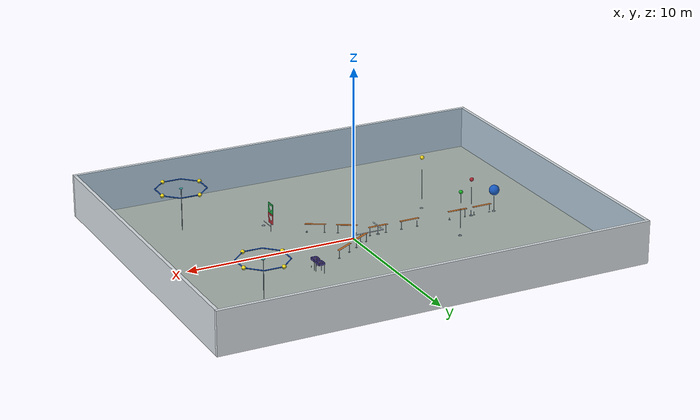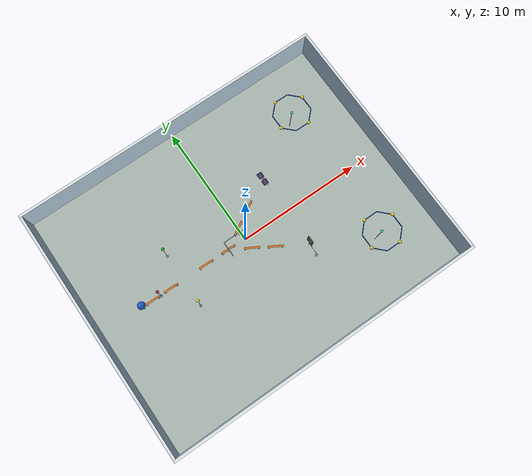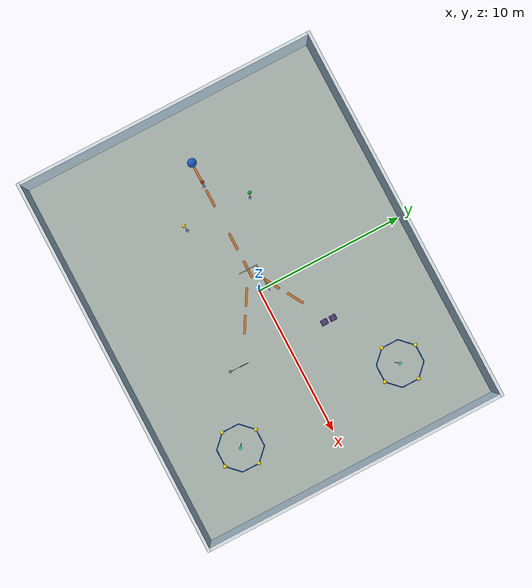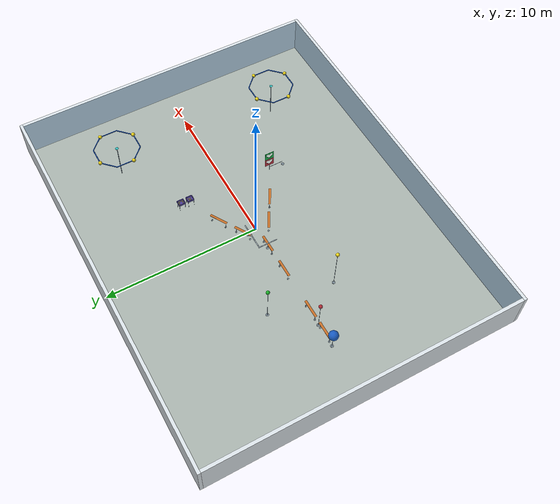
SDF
<?xml version="1.0" ?>
<sdf version="1.6">
  <world name="niot_mission">
    <scene>
      <ambient>0.6 0.6 0.6 1</ambient>
      <background>0.7 0.85 0.95 1</background>
      <shadows>true</shadows>
    </scene>
    <include><uri>model://sun</uri></include>
    <light name='fill' type='directional'>
      <pose>0 0 10 0 0 0</pose>
      <diffuse>0.5 0.5 0.5 1</diffuse><specular>0.1 0.1 0.1 1</specular>
      <direction>0.4 0.4 -1</direction><cast_shadows>false</cast_shadows>
    </light>
    <physics name='default' type='ode'><gravity>0 0 -9.81</gravity></physics>
<model name='niot_pool'><static>true</static><pose>0 0 0 0 0 0.0</pose><link name='link'><visual name='floor_v'><pose>0 0 -0.05 0 0 0</pose><transparency>0.0</transparency><geometry><box><size>25.0 20.0 0.1</size></box></geometry><material><ambient>0.8 0.78 0.7 1.0</ambient><diffuse>0.8 0.78 0.7 1.0</diffuse><specular>0.1 0.1 0.1 1</specular><emissive>0.096 0.0936 0.08399999999999999 1</emissive></material></visual><collision name='floor_c'><pose>0 0 -0.05 0 0 0</pose><geometry><box><size>25.0 20.0 0.1</size></box></geometry></collision><visual name='wn_v'><pose>0 10.1 1.25 0 0 0</pose><transparency>0.0</transparency><geometry><box><size>25.4 0.2 2.5</size></box></geometry><material><ambient>0.85 0.88 0.9 1.0</ambient><diffuse>0.85 0.88 0.9 1.0</diffuse><specular>0.1 0.1 0.1 1</specular><emissive>0.102 0.1056 0.108 1</emissive></material></visual><collision name='wn_c'><pose>0 10.1 1.25 0 0 0</pose><geometry><box><size>25.4 0.2 2.5</size></box></geometry></collision><visual name='ws_v'><pose>0 -10.1 1.25 0 0 0</pose><transparency>0.0</transparency><geometry><box><size>25.4 0.2 2.5</size></box></geometry><material><ambient>0.85 0.88 0.9 1.0</ambient><diffuse>0.85 0.88 0.9 1.0</diffuse><specular>0.1 0.1 0.1 1</specular><emissive>0.102 0.1056 0.108 1</emissive></material></visual><collision name='ws_c'><pose>0 -10.1 1.25 0 0 0</pose><geometry><box><size>25.4 0.2 2.5</size></box></geometry></collision><visual name='we_v'><pose>12.6 0 1.25 0 0 0</pose><transparency>0.0</transparency><geometry><box><size>0.2 20.0 2.5</size></box></geometry><material><ambient>0.85 0.88 0.9 1.0</ambient><diffuse>0.85 0.88 0.9 1.0</diffuse><specular>0.1 0.1 0.1 1</specular><emissive>0.102 0.1056 0.108 1</emissive></material></visual><collision name='we_c'><pose>12.6 0 1.25 0 0 0</pose><geometry><box><size>0.2 20.0 2.5</size></box></geometry></collision><visual name='ww_v'><pose>-12.6 0 1.25 0 0 0</pose><transparency>0.0</transparency><geometry><box><size>0.2 20.0 2.5</size></box></geometry><material><ambient>0.85 0.88 0.9 1.0</ambient><diffuse>0.85 0.88 0.9 1.0</diffuse><specular>0.1 0.1 0.1 1</specular><emissive>0.102 0.1056 0.108 1</emissive></material></visual><collision name='ww_c'><pose>-12.6 0 1.25 0 0 0</pose><geometry><box><size>0.2 20.0 2.5</size></box></geometry></collision></link></model>
<model name='water'><static>true</static><pose>0 0 0 0 0 0.0</pose><link name='link'><visual name='water'><pose>0 0 1.25 0 0 0</pose><transparency>0.8</transparency><geometry><box><size>25.0 20.0 2.5</size></box></geometry><material><ambient>0.1 0.4 0.6 1.0</ambient><diffuse>0.1 0.4 0.6 1.0</diffuse><specular>0.1 0.1 0.1 1</specular><emissive>0.012 0.048 0.072 1</emissive></material></visual></link></model>
<model name='flower_red'><static>true</static><pose>-7.5 0.0 0 0 0 0.0</pose><link name='link'><visual name='base_v'><pose>0 0 0.005 0 0 0</pose><transparency>0.0</transparency><geometry><cylinder><radius>0.1</radius><length>0.01</length></cylinder></geometry><material><ambient>0.55 0.55 0.55 1.0</ambient><diffuse>0.55 0.55 0.55 1.0</diffuse><specular>0.1 0.1 0.1 1</specular><emissive>0.066 0.066 0.066 1</emissive></material></visual><collision name='base_c'><pose>0 0 0.005 0 0 0</pose><geometry><cylinder><radius>0.1</radius><length>0.01</length></cylinder></geometry></collision><visual name='post_v'><pose>0 0 1.05 0 0 0</pose><transparency>0.0</transparency><geometry><cylinder><radius>0.0105</radius><length>2.1</length></cylinder></geometry><material><ambient>0.55 0.55 0.55 1.0</ambient><diffuse>0.55 0.55 0.55 1.0</diffuse><specular>0.1 0.1 0.1 1</specular><emissive>0.066 0.066 0.066 1</emissive></material></visual><collision name='post_c'><pose>0 0 1.05 0 0 0</pose><geometry><cylinder><radius>0.0105</radius><length>2.1</length></cylinder></geometry></collision><visual name='ball_v'><pose>0 0 2.2143 0 0 0</pose><transparency>0.0</transparency><geometry><sphere><radius>0.1143</radius></sphere></geometry><material><ambient>0.85 0.1 0.1 1.0</ambient><diffuse>0.85 0.1 0.1 1.0</diffuse><specular>0.1 0.1 0.1 1</specular><emissive>0.102 0.012 0.012 1</emissive></material></visual><collision name='ball_c'><pose>0 0 2.2143 0 0 0</pose><geometry><sphere><radius>0.1143</radius></sphere></geometry></collision></link></model>
<model name='flower_green'><static>true</static><pose>-5.515686516701557 2.25 0 0 0 0.0</pose><link name='link'><visual name='base_v'><pose>0 0 0.005 0 0 0</pose><transparency>0.0</transparency><geometry><cylinder><radius>0.1</radius><length>0.01</length></cylinder></geometry><material><ambient>0.55 0.55 0.55 1.0</ambient><diffuse>0.55 0.55 0.55 1.0</diffuse><specular>0.1 0.1 0.1 1</specular><emissive>0.066 0.066 0.066 1</emissive></material></visual><collision name='base_c'><pose>0 0 0.005 0 0 0</pose><geometry><cylinder><radius>0.1</radius><length>0.01</length></cylinder></geometry></collision><visual name='post_v'><pose>0 0 1.25 0 0 0</pose><transparency>0.0</transparency><geometry><cylinder><radius>0.0105</radius><length>2.5</length></cylinder></geometry><material><ambient>0.55 0.55 0.55 1.0</ambient><diffuse>0.55 0.55 0.55 1.0</diffuse><specular>0.1 0.1 0.1 1</specular><emissive>0.066 0.066 0.066 1</emissive></material></visual><collision name='post_c'><pose>0 0 1.25 0 0 0</pose><geometry><cylinder><radius>0.0105</radius><length>2.5</length></cylinder></geometry></collision><visual name='ball_v'><pose>0 0 2.6143 0 0 0</pose><transparency>0.0</transparency><geometry><sphere><radius>0.1143</radius></sphere></geometry><material><ambient>0.1 0.7 0.15 1.0</ambient><diffuse>0.1 0.7 0.15 1.0</diffuse><specular>0.1 0.1 0.1 1</specular><emissive>0.012 0.08399999999999999 0.018 1</emissive></material></visual><collision name='ball_c'><pose>0 0 2.6143 0 0 0</pose><geometry><sphere><radius>0.1143</radius></sphere></geometry></collision></link></model>
<model name='flower_yellow'><static>true</static><pose>-5.515686516701557 -2.25 0 0 0 0.0</pose><link name='link'><visual name='base_v'><pose>0 0 0.005 0 0 0</pose><transparency>0.0</transparency><geometry><cylinder><radius>0.1</radius><length>0.01</length></cylinder></geometry><material><ambient>0.55 0.55 0.55 1.0</ambient><diffuse>0.55 0.55 0.55 1.0</diffuse><specular>0.1 0.1 0.1 1</specular><emissive>0.066 0.066 0.066 1</emissive></material></visual><collision name='base_c'><pose>0 0 0.005 0 0 0</pose><geometry><cylinder><radius>0.1</radius><length>0.01</length></cylinder></geometry></collision><visual name='post_v'><pose>0 0 1.5 0 0 0</pose><transparency>0.0</transparency><geometry><cylinder><radius>0.0105</radius><length>3.0</length></cylinder></geometry><material><ambient>0.55 0.55 0.55 1.0</ambient><diffuse>0.55 0.55 0.55 1.0</diffuse><specular>0.1 0.1 0.1 1</specular><emissive>0.066 0.066 0.066 1</emissive></material></visual><collision name='post_c'><pose>0 0 1.5 0 0 0</pose><geometry><cylinder><radius>0.0105</radius><length>3.0</length></cylinder></geometry></collision><visual name='ball_v'><pose>0 0 3.1143 0 0 0</pose><transparency>0.0</transparency><geometry><sphere><radius>0.1143</radius></sphere></geometry><material><ambient>0.95 0.85 0.1 1.0</ambient><diffuse>0.95 0.85 0.1 1.0</diffuse><specular>0.1 0.1 0.1 1</specular><emissive>0.11399999999999999 0.102 0.012 1</emissive></material></visual><collision name='ball_c'><pose>0 0 3.1143 0 0 0</pose><geometry><sphere><radius>0.1143</radius></sphere></geometry></collision></link></model>
<model name='start_buoy'><static>true</static><pose>-9.0 0.0 0 0 0 0.0</pose><link name='link'><visual name='base_v'><pose>0 0 0.005 0 0 0</pose><transparency>0.0</transparency><geometry><cylinder><radius>0.1</radius><length>0.01</length></cylinder></geometry><material><ambient>0.55 0.55 0.55 1.0</ambient><diffuse>0.55 0.55 0.55 1.0</diffuse><specular>0.1 0.1 0.1 1</specular><emissive>0.066 0.066 0.066 1</emissive></material></visual><collision name='base_c'><pose>0 0 0.005 0 0 0</pose><geometry><cylinder><radius>0.1</radius><length>0.01</length></cylinder></geometry></collision><visual name='post_v'><pose>0 0 0.5 0 0 0</pose><transparency>0.0</transparency><geometry><cylinder><radius>0.0105</radius><length>1.0</length></cylinder></geometry><material><ambient>0.55 0.55 0.55 1.0</ambient><diffuse>0.55 0.55 0.55 1.0</diffuse><specular>0.1 0.1 0.1 1</specular><emissive>0.066 0.066 0.066 1</emissive></material></visual><collision name='post_c'><pose>0 0 0.5 0 0 0</pose><geometry><cylinder><radius>0.0105</radius><length>1.0</length></cylinder></geometry></collision><visual name='ball_v'><pose>0 0 1.3 0 0 0</pose><transparency>0.0</transparency><geometry><sphere><radius>0.3</radius></sphere></geometry><material><ambient>0.1 0.35 0.8 1.0</ambient><diffuse>0.1 0.35 0.8 1.0</diffuse><specular>0.1 0.1 0.1 1</specular><emissive>0.012 0.041999999999999996 0.096 1</emissive></material></visual><collision name='ball_c'><pose>0 0 1.3 0 0 0</pose><geometry><sphere><radius>0.3</radius></sphere></geometry></collision></link></model>
<model name='path_0'><static>true</static><pose>-8.2 0.0 0 0 0 0.0</pose><link name='link'><visual name='plate_v'><pose>0 0 0.5 0 0 0</pose><transparency>0.0</transparency><geometry><box><size>1.2 0.15 0.01</size></box></geometry><material><ambient>0.95 0.45 0.05 1.0</ambient><diffuse>0.95 0.45 0.05 1.0</diffuse><specular>0.1 0.1 0.1 1</specular><emissive>0.11399999999999999 0.054 0.006 1</emissive></material></visual><collision name='plate_c'><pose>0 0 0.5 0 0 0</pose><geometry><box><size>1.2 0.15 0.01</size></box></geometry></collision><visual name='post-0.5_v'><pose>-0.5 0 0.25 0 0 0</pose><transparency>0.0</transparency><geometry><cylinder><radius>0.0105</radius><length>0.5</length></cylinder></geometry><material><ambient>0.55 0.55 0.55 1.0</ambient><diffuse>0.55 0.55 0.55 1.0</diffuse><specular>0.1 0.1 0.1 1</specular><emissive>0.066 0.066 0.066 1</emissive></material></visual><visual name='base-0.5_v'><pose>-0.5 0 0.005 0 0 0</pose><transparency>0.0</transparency><geometry><cylinder><radius>0.06</radius><length>0.01</length></cylinder></geometry><material><ambient>0.55 0.55 0.55 1.0</ambient><diffuse>0.55 0.55 0.55 1.0</diffuse><specular>0.1 0.1 0.1 1</specular><emissive>0.066 0.066 0.066 1</emissive></material></visual><visual name='post0.5_v'><pose>0.5 0 0.25 0 0 0</pose><transparency>0.0</transparency><geometry><cylinder><radius>0.0105</radius><length>0.5</length></cylinder></geometry><material><ambient>0.55 0.55 0.55 1.0</ambient><diffuse>0.55 0.55 0.55 1.0</diffuse><specular>0.1 0.1 0.1 1</specular><emissive>0.066 0.066 0.066 1</emissive></material></visual><visual name='base0.5_v'><pose>0.5 0 0.005 0 0 0</pose><transparency>0.0</transparency><geometry><cylinder><radius>0.06</radius><length>0.01</length></cylinder></geometry><material><ambient>0.55 0.55 0.55 1.0</ambient><diffuse>0.55 0.55 0.55 1.0</diffuse><specular>0.1 0.1 0.1 1</specular><emissive>0.066 0.066 0.066 1</emissive></material></visual></link></model>
<model name='path_1'><static>true</static><pose>-6.6 0.0 0 0 0 0.0</pose><link name='link'><visual name='plate_v'><pose>0 0 0.5 0 0 0</pose><transparency>0.0</transparency><geometry><box><size>1.2 0.15 0.01</size></box></geometry><material><ambient>0.95 0.45 0.05 1.0</ambient><diffuse>0.95 0.45 0.05 1.0</diffuse><specular>0.1 0.1 0.1 1</specular><emissive>0.11399999999999999 0.054 0.006 1</emissive></material></visual><collision name='plate_c'><pose>0 0 0.5 0 0 0</pose><geometry><box><size>1.2 0.15 0.01</size></box></geometry></collision><visual name='post-0.5_v'><pose>-0.5 0 0.25 0 0 0</pose><transparency>0.0</transparency><geometry><cylinder><radius>0.0105</radius><length>0.5</length></cylinder></geometry><material><ambient>0.55 0.55 0.55 1.0</ambient><diffuse>0.55 0.55 0.55 1.0</diffuse><specular>0.1 0.1 0.1 1</specular><emissive>0.066 0.066 0.066 1</emissive></material></visual><visual name='base-0.5_v'><pose>-0.5 0 0.005 0 0 0</pose><transparency>0.0</transparency><geometry><cylinder><radius>0.06</radius><length>0.01</length></cylinder></geometry><material><ambient>0.55 0.55 0.55 1.0</ambient><diffuse>0.55 0.55 0.55 1.0</diffuse><specular>0.1 0.1 0.1 1</specular><emissive>0.066 0.066 0.066 1</emissive></material></visual><visual name='post0.5_v'><pose>0.5 0 0.25 0 0 0</pose><transparency>0.0</transparency><geometry><cylinder><radius>0.0105</radius><length>0.5</length></cylinder></geometry><material><ambient>0.55 0.55 0.55 1.0</ambient><diffuse>0.55 0.55 0.55 1.0</diffuse><specular>0.1 0.1 0.1 1</specular><emissive>0.066 0.066 0.066 1</emissive></material></visual><visual name='base0.5_v'><pose>0.5 0 0.005 0 0 0</pose><transparency>0.0</transparency><geometry><cylinder><radius>0.06</radius><length>0.01</length></cylinder></geometry><material><ambient>0.55 0.55 0.55 1.0</ambient><diffuse>0.55 0.55 0.55 1.0</diffuse><specular>0.1 0.1 0.1 1</specular><emissive>0.066 0.066 0.066 1</emissive></material></visual></link></model>
<model name='path_2'><static>true</static><pose>-3.5 0.0 0 0 0 0.0</pose><link name='link'><visual name='plate_v'><pose>0 0 0.5 0 0 0</pose><transparency>0.0</transparency><geometry><box><size>1.2 0.15 0.01</size></box></geometry><material><ambient>0.95 0.45 0.05 1.0</ambient><diffuse>0.95 0.45 0.05 1.0</diffuse><specular>0.1 0.1 0.1 1</specular><emissive>0.11399999999999999 0.054 0.006 1</emissive></material></visual><collision name='plate_c'><pose>0 0 0.5 0 0 0</pose><geometry><box><size>1.2 0.15 0.01</size></box></geometry></collision><visual name='post-0.5_v'><pose>-0.5 0 0.25 0 0 0</pose><transparency>0.0</transparency><geometry><cylinder><radius>0.0105</radius><length>0.5</length></cylinder></geometry><material><ambient>0.55 0.55 0.55 1.0</ambient><diffuse>0.55 0.55 0.55 1.0</diffuse><specular>0.1 0.1 0.1 1</specular><emissive>0.066 0.066 0.066 1</emissive></material></visual><visual name='base-0.5_v'><pose>-0.5 0 0.005 0 0 0</pose><transparency>0.0</transparency><geometry><cylinder><radius>0.06</radius><length>0.01</length></cylinder></geometry><material><ambient>0.55 0.55 0.55 1.0</ambient><diffuse>0.55 0.55 0.55 1.0</diffuse><specular>0.1 0.1 0.1 1</specular><emissive>0.066 0.066 0.066 1</emissive></material></visual><visual name='post0.5_v'><pose>0.5 0 0.25 0 0 0</pose><transparency>0.0</transparency><geometry><cylinder><radius>0.0105</radius><length>0.5</length></cylinder></geometry><material><ambient>0.55 0.55 0.55 1.0</ambient><diffuse>0.55 0.55 0.55 1.0</diffuse><specular>0.1 0.1 0.1 1</specular><emissive>0.066 0.066 0.066 1</emissive></material></visual><visual name='base0.5_v'><pose>0.5 0 0.005 0 0 0</pose><transparency>0.0</transparency><geometry><cylinder><radius>0.06</radius><length>0.01</length></cylinder></geometry><material><ambient>0.55 0.55 0.55 1.0</ambient><diffuse>0.55 0.55 0.55 1.0</diffuse><specular>0.1 0.1 0.1 1</specular><emissive>0.066 0.066 0.066 1</emissive></material></visual></link></model>
<model name='path_3'><static>true</static><pose>-1.5156865167015567 0.0 0 0 0 0.0</pose><link name='link'><visual name='plate_v'><pose>0 0 0.5 0 0 0</pose><transparency>0.0</transparency><geometry><box><size>1.2 0.15 0.01</size></box></geometry><material><ambient>0.95 0.45 0.05 1.0</ambient><diffuse>0.95 0.45 0.05 1.0</diffuse><specular>0.1 0.1 0.1 1</specular><emissive>0.11399999999999999 0.054 0.006 1</emissive></material></visual><collision name='plate_c'><pose>0 0 0.5 0 0 0</pose><geometry><box><size>1.2 0.15 0.01</size></box></geometry></collision><visual name='post-0.5_v'><pose>-0.5 0 0.25 0 0 0</pose><transparency>0.0</transparency><geometry><cylinder><radius>0.0105</radius><length>0.5</length></cylinder></geometry><material><ambient>0.55 0.55 0.55 1.0</ambient><diffuse>0.55 0.55 0.55 1.0</diffuse><specular>0.1 0.1 0.1 1</specular><emissive>0.066 0.066 0.066 1</emissive></material></visual><visual name='base-0.5_v'><pose>-0.5 0 0.005 0 0 0</pose><transparency>0.0</transparency><geometry><cylinder><radius>0.06</radius><length>0.01</length></cylinder></geometry><material><ambient>0.55 0.55 0.55 1.0</ambient><diffuse>0.55 0.55 0.55 1.0</diffuse><specular>0.1 0.1 0.1 1</specular><emissive>0.066 0.066 0.066 1</emissive></material></visual><visual name='post0.5_v'><pose>0.5 0 0.25 0 0 0</pose><transparency>0.0</transparency><geometry><cylinder><radius>0.0105</radius><length>0.5</length></cylinder></geometry><material><ambient>0.55 0.55 0.55 1.0</ambient><diffuse>0.55 0.55 0.55 1.0</diffuse><specular>0.1 0.1 0.1 1</specular><emissive>0.066 0.066 0.066 1</emissive></material></visual><visual name='base0.5_v'><pose>0.5 0 0.005 0 0 0</pose><transparency>0.0</transparency><geometry><cylinder><radius>0.06</radius><length>0.01</length></cylinder></geometry><material><ambient>0.55 0.55 0.55 1.0</ambient><diffuse>0.55 0.55 0.55 1.0</diffuse><specular>0.1 0.1 0.1 1</specular><emissive>0.066 0.066 0.066 1</emissive></material></visual></link></model>
<model name='path_4'><static>true</static><pose>-0.01568651670155674 0.9 0 0 0 0.5235987755982988</pose><link name='link'><visual name='plate_v'><pose>0 0 0.5 0 0 0</pose><transparency>0.0</transparency><geometry><box><size>1.2 0.15 0.01</size></box></geometry><material><ambient>0.95 0.45 0.05 1.0</ambient><diffuse>0.95 0.45 0.05 1.0</diffuse><specular>0.1 0.1 0.1 1</specular><emissive>0.11399999999999999 0.054 0.006 1</emissive></material></visual><collision name='plate_c'><pose>0 0 0.5 0 0 0</pose><geometry><box><size>1.2 0.15 0.01</size></box></geometry></collision><visual name='post-0.5_v'><pose>-0.5 0 0.25 0 0 0</pose><transparency>0.0</transparency><geometry><cylinder><radius>0.0105</radius><length>0.5</length></cylinder></geometry><material><ambient>0.55 0.55 0.55 1.0</ambient><diffuse>0.55 0.55 0.55 1.0</diffuse><specular>0.1 0.1 0.1 1</specular><emissive>0.066 0.066 0.066 1</emissive></material></visual><visual name='base-0.5_v'><pose>-0.5 0 0.005 0 0 0</pose><transparency>0.0</transparency><geometry><cylinder><radius>0.06</radius><length>0.01</length></cylinder></geometry><material><ambient>0.55 0.55 0.55 1.0</ambient><diffuse>0.55 0.55 0.55 1.0</diffuse><specular>0.1 0.1 0.1 1</specular><emissive>0.066 0.066 0.066 1</emissive></material></visual><visual name='post0.5_v'><pose>0.5 0 0.25 0 0 0</pose><transparency>0.0</transparency><geometry><cylinder><radius>0.0105</radius><length>0.5</length></cylinder></geometry><material><ambient>0.55 0.55 0.55 1.0</ambient><diffuse>0.55 0.55 0.55 1.0</diffuse><specular>0.1 0.1 0.1 1</specular><emissive>0.066 0.066 0.066 1</emissive></material></visual><visual name='base0.5_v'><pose>0.5 0 0.005 0 0 0</pose><transparency>0.0</transparency><geometry><cylinder><radius>0.06</radius><length>0.01</length></cylinder></geometry><material><ambient>0.55 0.55 0.55 1.0</ambient><diffuse>0.55 0.55 0.55 1.0</diffuse><specular>0.1 0.1 0.1 1</specular><emissive>0.066 0.066 0.066 1</emissive></material></visual></link></model>
<model name='path_5'><static>true</static><pose>1.4843134832984433 1.8 0 0 0 0.5235987755982988</pose><link name='link'><visual name='plate_v'><pose>0 0 0.5 0 0 0</pose><transparency>0.0</transparency><geometry><box><size>1.2 0.15 0.01</size></box></geometry><material><ambient>0.95 0.45 0.05 1.0</ambient><diffuse>0.95 0.45 0.05 1.0</diffuse><specular>0.1 0.1 0.1 1</specular><emissive>0.11399999999999999 0.054 0.006 1</emissive></material></visual><collision name='plate_c'><pose>0 0 0.5 0 0 0</pose><geometry><box><size>1.2 0.15 0.01</size></box></geometry></collision><visual name='post-0.5_v'><pose>-0.5 0 0.25 0 0 0</pose><transparency>0.0</transparency><geometry><cylinder><radius>0.0105</radius><length>0.5</length></cylinder></geometry><material><ambient>0.55 0.55 0.55 1.0</ambient><diffuse>0.55 0.55 0.55 1.0</diffuse><specular>0.1 0.1 0.1 1</specular><emissive>0.066 0.066 0.066 1</emissive></material></visual><visual name='base-0.5_v'><pose>-0.5 0 0.005 0 0 0</pose><transparency>0.0</transparency><geometry><cylinder><radius>0.06</radius><length>0.01</length></cylinder></geometry><material><ambient>0.55 0.55 0.55 1.0</ambient><diffuse>0.55 0.55 0.55 1.0</diffuse><specular>0.1 0.1 0.1 1</specular><emissive>0.066 0.066 0.066 1</emissive></material></visual><visual name='post0.5_v'><pose>0.5 0 0.25 0 0 0</pose><transparency>0.0</transparency><geometry><cylinder><radius>0.0105</radius><length>0.5</length></cylinder></geometry><material><ambient>0.55 0.55 0.55 1.0</ambient><diffuse>0.55 0.55 0.55 1.0</diffuse><specular>0.1 0.1 0.1 1</specular><emissive>0.066 0.066 0.066 1</emissive></material></visual><visual name='base0.5_v'><pose>0.5 0 0.005 0 0 0</pose><transparency>0.0</transparency><geometry><cylinder><radius>0.06</radius><length>0.01</length></cylinder></geometry><material><ambient>0.55 0.55 0.55 1.0</ambient><diffuse>0.55 0.55 0.55 1.0</diffuse><specular>0.1 0.1 0.1 1</specular><emissive>0.066 0.066 0.066 1</emissive></material></visual></link></model>
<model name='path_6'><static>true</static><pose>-0.01568651670155674 -0.9 0 0 0 -0.5235987755982988</pose><link name='link'><visual name='plate_v'><pose>0 0 0.5 0 0 0</pose><transparency>0.0</transparency><geometry><box><size>1.2 0.15 0.01</size></box></geometry><material><ambient>0.95 0.45 0.05 1.0</ambient><diffuse>0.95 0.45 0.05 1.0</diffuse><specular>0.1 0.1 0.1 1</specular><emissive>0.11399999999999999 0.054 0.006 1</emissive></material></visual><collision name='plate_c'><pose>0 0 0.5 0 0 0</pose><geometry><box><size>1.2 0.15 0.01</size></box></geometry></collision><visual name='post-0.5_v'><pose>-0.5 0 0.25 0 0 0</pose><transparency>0.0</transparency><geometry><cylinder><radius>0.0105</radius><length>0.5</length></cylinder></geometry><material><ambient>0.55 0.55 0.55 1.0</ambient><diffuse>0.55 0.55 0.55 1.0</diffuse><specular>0.1 0.1 0.1 1</specular><emissive>0.066 0.066 0.066 1</emissive></material></visual><visual name='base-0.5_v'><pose>-0.5 0 0.005 0 0 0</pose><transparency>0.0</transparency><geometry><cylinder><radius>0.06</radius><length>0.01</length></cylinder></geometry><material><ambient>0.55 0.55 0.55 1.0</ambient><diffuse>0.55 0.55 0.55 1.0</diffuse><specular>0.1 0.1 0.1 1</specular><emissive>0.066 0.066 0.066 1</emissive></material></visual><visual name='post0.5_v'><pose>0.5 0 0.25 0 0 0</pose><transparency>0.0</transparency><geometry><cylinder><radius>0.0105</radius><length>0.5</length></cylinder></geometry><material><ambient>0.55 0.55 0.55 1.0</ambient><diffuse>0.55 0.55 0.55 1.0</diffuse><specular>0.1 0.1 0.1 1</specular><emissive>0.066 0.066 0.066 1</emissive></material></visual><visual name='base0.5_v'><pose>0.5 0 0.005 0 0 0</pose><transparency>0.0</transparency><geometry><cylinder><radius>0.06</radius><length>0.01</length></cylinder></geometry><material><ambient>0.55 0.55 0.55 1.0</ambient><diffuse>0.55 0.55 0.55 1.0</diffuse><specular>0.1 0.1 0.1 1</specular><emissive>0.066 0.066 0.066 1</emissive></material></visual></link></model>
<model name='path_7'><static>true</static><pose>1.4843134832984433 -1.8 0 0 0 -0.5235987755982988</pose><link name='link'><visual name='plate_v'><pose>0 0 0.5 0 0 0</pose><transparency>0.0</transparency><geometry><box><size>1.2 0.15 0.01</size></box></geometry><material><ambient>0.95 0.45 0.05 1.0</ambient><diffuse>0.95 0.45 0.05 1.0</diffuse><specular>0.1 0.1 0.1 1</specular><emissive>0.11399999999999999 0.054 0.006 1</emissive></material></visual><collision name='plate_c'><pose>0 0 0.5 0 0 0</pose><geometry><box><size>1.2 0.15 0.01</size></box></geometry></collision><visual name='post-0.5_v'><pose>-0.5 0 0.25 0 0 0</pose><transparency>0.0</transparency><geometry><cylinder><radius>0.0105</radius><length>0.5</length></cylinder></geometry><material><ambient>0.55 0.55 0.55 1.0</ambient><diffuse>0.55 0.55 0.55 1.0</diffuse><specular>0.1 0.1 0.1 1</specular><emissive>0.066 0.066 0.066 1</emissive></material></visual><visual name='base-0.5_v'><pose>-0.5 0 0.005 0 0 0</pose><transparency>0.0</transparency><geometry><cylinder><radius>0.06</radius><length>0.01</length></cylinder></geometry><material><ambient>0.55 0.55 0.55 1.0</ambient><diffuse>0.55 0.55 0.55 1.0</diffuse><specular>0.1 0.1 0.1 1</specular><emissive>0.066 0.066 0.066 1</emissive></material></visual><visual name='post0.5_v'><pose>0.5 0 0.25 0 0 0</pose><transparency>0.0</transparency><geometry><cylinder><radius>0.0105</radius><length>0.5</length></cylinder></geometry><material><ambient>0.55 0.55 0.55 1.0</ambient><diffuse>0.55 0.55 0.55 1.0</diffuse><specular>0.1 0.1 0.1 1</specular><emissive>0.066 0.066 0.066 1</emissive></material></visual><visual name='base0.5_v'><pose>0.5 0 0.005 0 0 0</pose><transparency>0.0</transparency><geometry><cylinder><radius>0.06</radius><length>0.01</length></cylinder></geometry><material><ambient>0.55 0.55 0.55 1.0</ambient><diffuse>0.55 0.55 0.55 1.0</diffuse><specular>0.1 0.1 0.1 1</specular><emissive>0.066 0.066 0.066 1</emissive></material></visual></link></model>
<model name='love_lane'><static>true</static><pose>-1.5156865167015567 0.0 0 0 0 0.0</pose><link name='link'><visual name='base1_v'><pose>0 0 0.005 0 0 0</pose><transparency>0.0</transparency><geometry><cylinder><radius>0.1</radius><length>0.01</length></cylinder></geometry><material><ambient>0.55 0.55 0.55 1.0</ambient><diffuse>0.55 0.55 0.55 1.0</diffuse><specular>0.1 0.1 0.1 1</specular><emissive>0.066 0.066 0.066 1</emissive></material></visual><collision name='base1_c'><pose>0 0 0.005 0 0 0</pose><geometry><cylinder><radius>0.1</radius><length>0.01</length></cylinder></geometry></collision><visual name='post1_v'><pose>0 0 0.25 0 0 0</pose><transparency>0.0</transparency><geometry><cylinder><radius>0.0105</radius><length>0.5</length></cylinder></geometry><material><ambient>0.55 0.55 0.55 1.0</ambient><diffuse>0.55 0.55 0.55 1.0</diffuse><specular>0.1 0.1 0.1 1</specular><emissive>0.066 0.066 0.066 1</emissive></material></visual><visual name='base2_v'><pose>1.4 0.6 0.005 0 0 0</pose><transparency>0.0</transparency><geometry><cylinder><radius>0.1</radius><length>0.01</length></cylinder></geometry><material><ambient>0.55 0.55 0.55 1.0</ambient><diffuse>0.55 0.55 0.55 1.0</diffuse><specular>0.1 0.1 0.1 1</specular><emissive>0.066 0.066 0.066 1</emissive></material></visual><collision name='base2_c'><pose>1.4 0.6 0.005 0 0 0</pose><geometry><cylinder><radius>0.1</radius><length>0.01</length></cylinder></geometry></collision><visual name='post2_v'><pose>1.4 0.6 0.25 0 0 0</pose><transparency>0.0</transparency><geometry><cylinder><radius>0.0105</radius><length>0.5</length></cylinder></geometry><material><ambient>0.55 0.55 0.55 1.0</ambient><diffuse>0.55 0.55 0.55 1.0</diffuse><specular>0.1 0.1 0.1 1</specular><emissive>0.066 0.066 0.066 1</emissive></material></visual><visual name='segY_v'><pose>0 0 0.5 1.5708 0 0</pose><transparency>0.0</transparency><geometry><cylinder><radius>0.0302</radius><length>1.2</length></cylinder></geometry><material><ambient>0.92 0.92 0.92 1.0</ambient><diffuse>0.92 0.92 0.92 1.0</diffuse><specular>0.1 0.1 0.1 1</specular><emissive>0.1104 0.1104 0.1104 1</emissive></material></visual><collision name='segY_c'><pose>0 0 0.5 1.5708 0 0</pose><geometry><cylinder><radius>0.0302</radius><length>1.2</length></cylinder></geometry></collision><visual name='elbow_v'><pose>0 0.6 0.5 0 0 0</pose><transparency>0.0</transparency><geometry><sphere><radius>0.03926</radius></sphere></geometry><material><ambient>0.92 0.92 0.92 1.0</ambient><diffuse>0.92 0.92 0.92 1.0</diffuse><specular>0.1 0.1 0.1 1</specular><emissive>0.1104 0.1104 0.1104 1</emissive></material></visual><collision name='elbow_c'><pose>0 0.6 0.5 0 0 0</pose><geometry><sphere><radius>0.03926</radius></sphere></geometry></collision><visual name='segX_v'><pose>0.9 0.6 0.5 0 1.5708 0</pose><transparency>0.0</transparency><geometry><cylinder><radius>0.0302</radius><length>1.8</length></cylinder></geometry><material><ambient>0.92 0.92 0.92 1.0</ambient><diffuse>0.92 0.92 0.92 1.0</diffuse><specular>0.1 0.1 0.1 1</specular><emissive>0.1104 0.1104 0.1104 1</emissive></material></visual><collision name='segX_c'><pose>0.9 0.6 0.5 0 1.5708 0</pose><geometry><cylinder><radius>0.0302</radius><length>1.8</length></cylinder></geometry></collision><visual name='cap1_v'><pose>0 -0.6 0.5 0 0 0</pose><transparency>0.0</transparency><geometry><sphere><radius>0.033220000000000006</radius></sphere></geometry><material><ambient>0.92 0.92 0.92 1.0</ambient><diffuse>0.92 0.92 0.92 1.0</diffuse><specular>0.1 0.1 0.1 1</specular><emissive>0.1104 0.1104 0.1104 1</emissive></material></visual><visual name='cap2_v'><pose>1.8 0.6 0.5 0 0 0</pose><transparency>0.0</transparency><geometry><sphere><radius>0.033220000000000006</radius></sphere></geometry><material><ambient>0.92 0.92 0.92 1.0</ambient><diffuse>0.92 0.92 0.92 1.0</diffuse><specular>0.1 0.1 0.1 1</specular><emissive>0.1104 0.1104 0.1104 1</emissive></material></visual></link></model>
<model name='bin_O'><static>true</static><pose>3.6804659060050753 3.3 0 0 0 0.0</pose><link name='link'><visual name='bottom_v'><pose>0 0 0.5 0 0 0</pose><transparency>0.0</transparency><geometry><box><size>0.36 0.42 0.02</size></box></geometry><material><ambient>0.35 0.2 0.55 1.0</ambient><diffuse>0.35 0.2 0.55 1.0</diffuse><specular>0.1 0.1 0.1 1</specular><emissive>0.041999999999999996 0.024 0.066 1</emissive></material></visual><collision name='bottom_c'><pose>0 0 0.5 0 0 0</pose><geometry><box><size>0.36 0.42 0.02</size></box></geometry></collision><visual name='w0_v'><pose>0.18 0 0.56 0 0 0</pose><transparency>0.0</transparency><geometry><box><size>0.02 0.42 0.12</size></box></geometry><material><ambient>0.35 0.2 0.55 1.0</ambient><diffuse>0.35 0.2 0.55 1.0</diffuse><specular>0.1 0.1 0.1 1</specular><emissive>0.041999999999999996 0.024 0.066 1</emissive></material></visual><collision name='w0_c'><pose>0.18 0 0.56 0 0 0</pose><geometry><box><size>0.02 0.42 0.12</size></box></geometry></collision><visual name='w1_v'><pose>-0.18 0 0.56 0 0 0</pose><transparency>0.0</transparency><geometry><box><size>0.02 0.42 0.12</size></box></geometry><material><ambient>0.35 0.2 0.55 1.0</ambient><diffuse>0.35 0.2 0.55 1.0</diffuse><specular>0.1 0.1 0.1 1</specular><emissive>0.041999999999999996 0.024 0.066 1</emissive></material></visual><collision name='w1_c'><pose>-0.18 0 0.56 0 0 0</pose><geometry><box><size>0.02 0.42 0.12</size></box></geometry></collision><visual name='w2_v'><pose>0 0.21 0.56 0 0 0</pose><transparency>0.0</transparency><geometry><box><size>0.36 0.02 0.12</size></box></geometry><material><ambient>0.35 0.2 0.55 1.0</ambient><diffuse>0.35 0.2 0.55 1.0</diffuse><specular>0.1 0.1 0.1 1</specular><emissive>0.041999999999999996 0.024 0.066 1</emissive></material></visual><collision name='w2_c'><pose>0 0.21 0.56 0 0 0</pose><geometry><box><size>0.36 0.02 0.12</size></box></geometry></collision><visual name='w3_v'><pose>0 -0.21 0.56 0 0 0</pose><transparency>0.0</transparency><geometry><box><size>0.36 0.02 0.12</size></box></geometry><material><ambient>0.35 0.2 0.55 1.0</ambient><diffuse>0.35 0.2 0.55 1.0</diffuse><specular>0.1 0.1 0.1 1</specular><emissive>0.041999999999999996 0.024 0.066 1</emissive></material></visual><collision name='w3_c'><pose>0 -0.21 0.56 0 0 0</pose><geometry><box><size>0.36 0.02 0.12</size></box></geometry></collision><visual name='pt-0.16-0.19_v'><pose>-0.16 -0.19 0.25 0 0 0</pose><transparency>0.0</transparency><geometry><cylinder><radius>0.0105</radius><length>0.5</length></cylinder></geometry><material><ambient>0.55 0.55 0.55 1.0</ambient><diffuse>0.55 0.55 0.55 1.0</diffuse><specular>0.1 0.1 0.1 1</specular><emissive>0.066 0.066 0.066 1</emissive></material></visual><visual name='pt-0.160.19_v'><pose>-0.16 0.19 0.25 0 0 0</pose><transparency>0.0</transparency><geometry><cylinder><radius>0.0105</radius><length>0.5</length></cylinder></geometry><material><ambient>0.55 0.55 0.55 1.0</ambient><diffuse>0.55 0.55 0.55 1.0</diffuse><specular>0.1 0.1 0.1 1</specular><emissive>0.066 0.066 0.066 1</emissive></material></visual><visual name='pt0.16-0.19_v'><pose>0.16 -0.19 0.25 0 0 0</pose><transparency>0.0</transparency><geometry><cylinder><radius>0.0105</radius><length>0.5</length></cylinder></geometry><material><ambient>0.55 0.55 0.55 1.0</ambient><diffuse>0.55 0.55 0.55 1.0</diffuse><specular>0.1 0.1 0.1 1</specular><emissive>0.066 0.066 0.066 1</emissive></material></visual><visual name='pt0.160.19_v'><pose>0.16 0.19 0.25 0 0 0</pose><transparency>0.0</transparency><geometry><cylinder><radius>0.0105</radius><length>0.5</length></cylinder></geometry><material><ambient>0.55 0.55 0.55 1.0</ambient><diffuse>0.55 0.55 0.55 1.0</diffuse><specular>0.1 0.1 0.1 1</specular><emissive>0.066 0.066 0.066 1</emissive></material></visual><visual name='o0.130_v'><pose>0.13 0 0.51 0 0 0</pose><transparency>0.0</transparency><geometry><box><size>0.03 0.26 0.005</size></box></geometry><material><ambient>0.95 0.85 0.1 1.0</ambient><diffuse>0.95 0.85 0.1 1.0</diffuse><specular>0.1 0.1 0.1 1</specular><emissive>0.11399999999999999 0.102 0.012 1</emissive></material></visual><visual name='o-0.130_v'><pose>-0.13 0 0.51 0 0 0</pose><transparency>0.0</transparency><geometry><box><size>0.03 0.26 0.005</size></box></geometry><material><ambient>0.95 0.85 0.1 1.0</ambient><diffuse>0.95 0.85 0.1 1.0</diffuse><specular>0.1 0.1 0.1 1</specular><emissive>0.11399999999999999 0.102 0.012 1</emissive></material></visual><visual name='o00.13_v'><pose>0 0.13 0.51 0 0 0</pose><transparency>0.0</transparency><geometry><box><size>0.26 0.03 0.005</size></box></geometry><material><ambient>0.95 0.85 0.1 1.0</ambient><diffuse>0.95 0.85 0.1 1.0</diffuse><specular>0.1 0.1 0.1 1</specular><emissive>0.11399999999999999 0.102 0.012 1</emissive></material></visual><visual name='o0-0.13_v'><pose>0 -0.13 0.51 0 0 0</pose><transparency>0.0</transparency><geometry><box><size>0.26 0.03 0.005</size></box></geometry><material><ambient>0.95 0.85 0.1 1.0</ambient><diffuse>0.95 0.85 0.1 1.0</diffuse><specular>0.1 0.1 0.1 1</specular><emissive>0.11399999999999999 0.102 0.012 1</emissive></material></visual></link></model>
<model name='bin_X'><static>true</static><pose>3.6804659060050753 2.7 0 0 0 0.0</pose><link name='link'><visual name='bottom_v'><pose>0 0 0.5 0 0 0</pose><transparency>0.0</transparency><geometry><box><size>0.36 0.42 0.02</size></box></geometry><material><ambient>0.35 0.2 0.55 1.0</ambient><diffuse>0.35 0.2 0.55 1.0</diffuse><specular>0.1 0.1 0.1 1</specular><emissive>0.041999999999999996 0.024 0.066 1</emissive></material></visual><collision name='bottom_c'><pose>0 0 0.5 0 0 0</pose><geometry><box><size>0.36 0.42 0.02</size></box></geometry></collision><visual name='w0_v'><pose>0.18 0 0.56 0 0 0</pose><transparency>0.0</transparency><geometry><box><size>0.02 0.42 0.12</size></box></geometry><material><ambient>0.35 0.2 0.55 1.0</ambient><diffuse>0.35 0.2 0.55 1.0</diffuse><specular>0.1 0.1 0.1 1</specular><emissive>0.041999999999999996 0.024 0.066 1</emissive></material></visual><collision name='w0_c'><pose>0.18 0 0.56 0 0 0</pose><geometry><box><size>0.02 0.42 0.12</size></box></geometry></collision><visual name='w1_v'><pose>-0.18 0 0.56 0 0 0</pose><transparency>0.0</transparency><geometry><box><size>0.02 0.42 0.12</size></box></geometry><material><ambient>0.35 0.2 0.55 1.0</ambient><diffuse>0.35 0.2 0.55 1.0</diffuse><specular>0.1 0.1 0.1 1</specular><emissive>0.041999999999999996 0.024 0.066 1</emissive></material></visual><collision name='w1_c'><pose>-0.18 0 0.56 0 0 0</pose><geometry><box><size>0.02 0.42 0.12</size></box></geometry></collision><visual name='w2_v'><pose>0 0.21 0.56 0 0 0</pose><transparency>0.0</transparency><geometry><box><size>0.36 0.02 0.12</size></box></geometry><material><ambient>0.35 0.2 0.55 1.0</ambient><diffuse>0.35 0.2 0.55 1.0</diffuse><specular>0.1 0.1 0.1 1</specular><emissive>0.041999999999999996 0.024 0.066 1</emissive></material></visual><collision name='w2_c'><pose>0 0.21 0.56 0 0 0</pose><geometry><box><size>0.36 0.02 0.12</size></box></geometry></collision><visual name='w3_v'><pose>0 -0.21 0.56 0 0 0</pose><transparency>0.0</transparency><geometry><box><size>0.36 0.02 0.12</size></box></geometry><material><ambient>0.35 0.2 0.55 1.0</ambient><diffuse>0.35 0.2 0.55 1.0</diffuse><specular>0.1 0.1 0.1 1</specular><emissive>0.041999999999999996 0.024 0.066 1</emissive></material></visual><collision name='w3_c'><pose>0 -0.21 0.56 0 0 0</pose><geometry><box><size>0.36 0.02 0.12</size></box></geometry></collision><visual name='pt-0.16-0.19_v'><pose>-0.16 -0.19 0.25 0 0 0</pose><transparency>0.0</transparency><geometry><cylinder><radius>0.0105</radius><length>0.5</length></cylinder></geometry><material><ambient>0.55 0.55 0.55 1.0</ambient><diffuse>0.55 0.55 0.55 1.0</diffuse><specular>0.1 0.1 0.1 1</specular><emissive>0.066 0.066 0.066 1</emissive></material></visual><visual name='pt-0.160.19_v'><pose>-0.16 0.19 0.25 0 0 0</pose><transparency>0.0</transparency><geometry><cylinder><radius>0.0105</radius><length>0.5</length></cylinder></geometry><material><ambient>0.55 0.55 0.55 1.0</ambient><diffuse>0.55 0.55 0.55 1.0</diffuse><specular>0.1 0.1 0.1 1</specular><emissive>0.066 0.066 0.066 1</emissive></material></visual><visual name='pt0.16-0.19_v'><pose>0.16 -0.19 0.25 0 0 0</pose><transparency>0.0</transparency><geometry><cylinder><radius>0.0105</radius><length>0.5</length></cylinder></geometry><material><ambient>0.55 0.55 0.55 1.0</ambient><diffuse>0.55 0.55 0.55 1.0</diffuse><specular>0.1 0.1 0.1 1</specular><emissive>0.066 0.066 0.066 1</emissive></material></visual><visual name='pt0.160.19_v'><pose>0.16 0.19 0.25 0 0 0</pose><transparency>0.0</transparency><geometry><cylinder><radius>0.0105</radius><length>0.5</length></cylinder></geometry><material><ambient>0.55 0.55 0.55 1.0</ambient><diffuse>0.55 0.55 0.55 1.0</diffuse><specular>0.1 0.1 0.1 1</specular><emissive>0.066 0.066 0.066 1</emissive></material></visual><visual name='m1_v'><pose>0 0 0.51 0 0 0.785</pose><transparency>0.0</transparency><geometry><box><size>0.3 0.03 0.005</size></box></geometry><material><ambient>0.95 0.85 0.1 1.0</ambient><diffuse>0.95 0.85 0.1 1.0</diffuse><specular>0.1 0.1 0.1 1</specular><emissive>0.11399999999999999 0.102 0.012 1</emissive></material></visual><visual name='m2_v'><pose>0 0 0.51 0 0 -0.785</pose><transparency>0.0</transparency><geometry><box><size>0.3 0.03 0.005</size></box></geometry><material><ambient>0.95 0.85 0.1 1.0</ambient><diffuse>0.95 0.85 0.1 1.0</diffuse><specular>0.1 0.1 0.1 1</specular><emissive>0.11399999999999999 0.102 0.012 1</emissive></material></visual></link></model>
<model name='cupid'><static>true</static><pose>3.6804659060050753 -3.0 0 0 0 0.0</pose><link name='link'><visual name='base_v'><pose>0 -1.0 0.005 0 0 0</pose><transparency>0.0</transparency><geometry><cylinder><radius>0.1</radius><length>0.01</length></cylinder></geometry><material><ambient>0.55 0.55 0.55 1.0</ambient><diffuse>0.55 0.55 0.55 1.0</diffuse><specular>0.1 0.1 0.1 1</specular><emissive>0.066 0.066 0.066 1</emissive></material></visual><collision name='base_c'><pose>0 -1.0 0.005 0 0 0</pose><geometry><cylinder><radius>0.1</radius><length>0.01</length></cylinder></geometry></collision><visual name='hpipe_v'><pose>0 -0.5 0.3 1.5708 0 0</pose><transparency>0.0</transparency><geometry><cylinder><radius>0.0105</radius><length>1.0</length></cylinder></geometry><material><ambient>0.55 0.55 0.55 1.0</ambient><diffuse>0.55 0.55 0.55 1.0</diffuse><specular>0.1 0.1 0.1 1</specular><emissive>0.066 0.066 0.066 1</emissive></material></visual><visual name='post_v'><pose>0 0 0.25 0 0 0</pose><transparency>0.0</transparency><geometry><cylinder><radius>0.0105</radius><length>0.5</length></cylinder></geometry><material><ambient>0.55 0.55 0.55 1.0</ambient><diffuse>0.55 0.55 0.55 1.0</diffuse><specular>0.1 0.1 0.1 1</specular><emissive>0.066 0.066 0.066 1</emissive></material></visual><visual name='red_v'><pose>0 0 0.805 0 0 0</pose><transparency>0.0</transparency><geometry><mesh><uri>model://srmauv_description/meshes/cupid_heart_plate.stl</uri><scale>0.001 0.001 0.001</scale></mesh></geometry><material><ambient>0.85 0.1 0.1 1.0</ambient><diffuse>0.85 0.1 0.1 1.0</diffuse><specular>0.1 0.1 0.1 1</specular><emissive>0.102 0.012 0.012 1</emissive></material></visual><collision name='red_c'><pose>0 0 0.805 0 0 0</pose><geometry><mesh><uri>model://srmauv_description/meshes/cupid_heart_plate.stl</uri><scale>0.001 0.001 0.001</scale></mesh></geometry></collision><visual name='green_v'><pose>0 0 1.415 0 0 0</pose><transparency>0.0</transparency><geometry><mesh><uri>model://srmauv_description/meshes/cupid_heart_plate.stl</uri><scale>0.001 0.001 0.001</scale></mesh></geometry><material><ambient>0.1 0.7 0.15 1.0</ambient><diffuse>0.1 0.7 0.15 1.0</diffuse><specular>0.1 0.1 0.1 1</specular><emissive>0.012 0.08399999999999999 0.018 1</emissive></material></visual><collision name='green_c'><pose>0 0 1.415 0 0 0</pose><geometry><mesh><uri>model://srmauv_description/meshes/cupid_heart_plate.stl</uri><scale>0.001 0.001 0.001</scale></mesh></geometry></collision></link></model>
<model name='octagon_left'><static>true</static><pose>8.01059292492727 5.5 0 0 0 0.0</pose><link name='link'><visual name='tether_v'><pose>0 0 1.25 0 0 0</pose><transparency>0.0</transparency><geometry><cylinder><radius>0.02</radius><length>2.5</length></cylinder></geometry><material><ambient>0.55 0.55 0.55 1.0</ambient><diffuse>0.55 0.55 0.55 1.0</diffuse><specular>0.1 0.1 0.1 1</specular><emissive>0.066 0.066 0.066 1</emissive></material></visual><visual name='candy_v'><pose>0 0 2.5 0 0 0</pose><transparency>0.0</transparency><geometry><cylinder><radius>0.1</radius><length>0.02</length></cylinder></geometry><material><ambient>0.2 0.7 0.7 1.0</ambient><diffuse>0.2 0.7 0.7 1.0</diffuse><specular>0.1 0.1 0.1 1</specular><emissive>0.024 0.08399999999999999 0.08399999999999999 1</emissive></material></visual><collision name='candy_c'><pose>0 0 2.5 0 0 0</pose><geometry><cylinder><radius>0.1</radius><length>0.02</length></cylinder></geometry></collision><visual name='seg0_v'><pose>0.9545941546018393 0.9545941546018393 2.5 0 1.5708 2.356194490192345</pose><transparency>0.0</transparency><geometry><cylinder><radius>0.0302</radius><length>1.1183766184073567</length></cylinder></geometry><material><ambient>0.1 0.35 0.8 1.0</ambient><diffuse>0.1 0.35 0.8 1.0</diffuse><specular>0.1 0.1 0.1 1</specular><emissive>0.012 0.041999999999999996 0.096 1</emissive></material></visual><collision name='seg0_c'><pose>0.9545941546018393 0.9545941546018393 2.5 0 1.5708 2.356194490192345</pose><geometry><cylinder><radius>0.0302</radius><length>1.1183766184073567</length></cylinder></geometry></collision><visual name='seg1_v'><pose>1.1102230246251565e-16 1.35 2.5 0 1.5708 3.141592653589793</pose><transparency>0.0</transparency><geometry><cylinder><radius>0.0302</radius><length>1.1183766184073567</length></cylinder></geometry><material><ambient>0.1 0.35 0.8 1.0</ambient><diffuse>0.1 0.35 0.8 1.0</diffuse><specular>0.1 0.1 0.1 1</specular><emissive>0.012 0.041999999999999996 0.096 1</emissive></material></visual><collision name='seg1_c'><pose>1.1102230246251565e-16 1.35 2.5 0 1.5708 3.141592653589793</pose><geometry><cylinder><radius>0.0302</radius><length>1.1183766184073567</length></cylinder></geometry></collision><visual name='seg2_v'><pose>-0.9545941546018392 0.9545941546018393 2.5 0 1.5708 -2.3561944901923453</pose><transparency>0.0</transparency><geometry><cylinder><radius>0.0302</radius><length>1.1183766184073567</length></cylinder></geometry><material><ambient>0.1 0.35 0.8 1.0</ambient><diffuse>0.1 0.35 0.8 1.0</diffuse><specular>0.1 0.1 0.1 1</specular><emissive>0.012 0.041999999999999996 0.096 1</emissive></material></visual><collision name='seg2_c'><pose>-0.9545941546018392 0.9545941546018393 2.5 0 1.5708 -2.3561944901923453</pose><geometry><cylinder><radius>0.0302</radius><length>1.1183766184073567</length></cylinder></geometry></collision><visual name='seg3_v'><pose>-1.35 1.6653345369377348e-16 2.5 0 1.5708 -1.5707963267948968</pose><transparency>0.0</transparency><geometry><cylinder><radius>0.0302</radius><length>1.1183766184073567</length></cylinder></geometry><material><ambient>0.1 0.35 0.8 1.0</ambient><diffuse>0.1 0.35 0.8 1.0</diffuse><specular>0.1 0.1 0.1 1</specular><emissive>0.012 0.041999999999999996 0.096 1</emissive></material></visual><collision name='seg3_c'><pose>-1.35 1.6653345369377348e-16 2.5 0 1.5708 -1.5707963267948968</pose><geometry><cylinder><radius>0.0302</radius><length>1.1183766184073567</length></cylinder></geometry></collision><visual name='seg4_v'><pose>-0.9545941546018392 -0.9545941546018393 2.5 0 1.5708 -0.7853981633974482</pose><transparency>0.0</transparency><geometry><cylinder><radius>0.0302</radius><length>1.1183766184073567</length></cylinder></geometry><material><ambient>0.1 0.35 0.8 1.0</ambient><diffuse>0.1 0.35 0.8 1.0</diffuse><specular>0.1 0.1 0.1 1</specular><emissive>0.012 0.041999999999999996 0.096 1</emissive></material></visual><collision name='seg4_c'><pose>-0.9545941546018392 -0.9545941546018393 2.5 0 1.5708 -0.7853981633974482</pose><geometry><cylinder><radius>0.0302</radius><length>1.1183766184073567</length></cylinder></geometry></collision><visual name='seg5_v'><pose>3.3306690738754696e-16 -1.35 2.5 0 1.5708 3.9708377530502687e-16</pose><transparency>0.0</transparency><geometry><cylinder><radius>0.0302</radius><length>1.1183766184073567</length></cylinder></geometry><material><ambient>0.1 0.35 0.8 1.0</ambient><diffuse>0.1 0.35 0.8 1.0</diffuse><specular>0.1 0.1 0.1 1</specular><emissive>0.012 0.041999999999999996 0.096 1</emissive></material></visual><collision name='seg5_c'><pose>3.3306690738754696e-16 -1.35 2.5 0 1.5708 3.9708377530502687e-16</pose><geometry><cylinder><radius>0.0302</radius><length>1.1183766184073567</length></cylinder></geometry></collision><visual name='seg6_v'><pose>0.9545941546018395 -0.9545941546018389 2.5 0 1.5708 0.7853981633974485</pose><transparency>0.0</transparency><geometry><cylinder><radius>0.0302</radius><length>1.1183766184073567</length></cylinder></geometry><material><ambient>0.1 0.35 0.8 1.0</ambient><diffuse>0.1 0.35 0.8 1.0</diffuse><specular>0.1 0.1 0.1 1</specular><emissive>0.012 0.041999999999999996 0.096 1</emissive></material></visual><collision name='seg6_c'><pose>0.9545941546018395 -0.9545941546018389 2.5 0 1.5708 0.7853981633974485</pose><geometry><cylinder><radius>0.0302</radius><length>1.1183766184073567</length></cylinder></geometry></collision><visual name='seg7_v'><pose>1.35 2.7755575615628914e-16 2.5 0 1.5708 1.5707963267948968</pose><transparency>0.0</transparency><geometry><cylinder><radius>0.0302</radius><length>1.1183766184073567</length></cylinder></geometry><material><ambient>0.1 0.35 0.8 1.0</ambient><diffuse>0.1 0.35 0.8 1.0</diffuse><specular>0.1 0.1 0.1 1</specular><emissive>0.012 0.041999999999999996 0.096 1</emissive></material></visual><collision name='seg7_c'><pose>1.35 2.7755575615628914e-16 2.5 0 1.5708 1.5707963267948968</pose><geometry><cylinder><radius>0.0302</radius><length>1.1183766184073567</length></cylinder></geometry></collision><visual name='fl0_v'><pose>1.35 0.5591883092036783 2.5 0 0 0</pose><transparency>0.0</transparency><geometry><sphere><radius>0.12</radius></sphere></geometry><material><ambient>0.95 0.85 0.1 1.0</ambient><diffuse>0.95 0.85 0.1 1.0</diffuse><specular>0.1 0.1 0.1 1</specular><emissive>0.11399999999999999 0.102 0.012 1</emissive></material></visual><collision name='fl0_c'><pose>1.35 0.5591883092036783 2.5 0 0 0</pose><geometry><sphere><radius>0.12</radius></sphere></geometry></collision><visual name='fl2_v'><pose>-0.5591883092036782 1.35 2.5 0 0 0</pose><transparency>0.0</transparency><geometry><sphere><radius>0.12</radius></sphere></geometry><material><ambient>0.95 0.85 0.1 1.0</ambient><diffuse>0.95 0.85 0.1 1.0</diffuse><specular>0.1 0.1 0.1 1</specular><emissive>0.11399999999999999 0.102 0.012 1</emissive></material></visual><collision name='fl2_c'><pose>-0.5591883092036782 1.35 2.5 0 0 0</pose><geometry><sphere><radius>0.12</radius></sphere></geometry></collision><visual name='fl4_v'><pose>-1.3500000000000003 -0.5591883092036782 2.5 0 0 0</pose><transparency>0.0</transparency><geometry><sphere><radius>0.12</radius></sphere></geometry><material><ambient>0.95 0.85 0.1 1.0</ambient><diffuse>0.95 0.85 0.1 1.0</diffuse><specular>0.1 0.1 0.1 1</specular><emissive>0.11399999999999999 0.102 0.012 1</emissive></material></visual><collision name='fl4_c'><pose>-1.3500000000000003 -0.5591883092036782 2.5 0 0 0</pose><geometry><sphere><radius>0.12</radius></sphere></geometry></collision><visual name='fl6_v'><pose>0.5591883092036787 -1.3499999999999999 2.5 0 0 0</pose><transparency>0.0</transparency><geometry><sphere><radius>0.12</radius></sphere></geometry><material><ambient>0.95 0.85 0.1 1.0</ambient><diffuse>0.95 0.85 0.1 1.0</diffuse><specular>0.1 0.1 0.1 1</specular><emissive>0.11399999999999999 0.102 0.012 1</emissive></material></visual><collision name='fl6_c'><pose>0.5591883092036787 -1.3499999999999999 2.5 0 0 0</pose><geometry><sphere><radius>0.12</radius></sphere></geometry></collision></link></model>
<model name='octagon_right'><static>true</static><pose>8.01059292492727 -5.5 0 0 0 0.0</pose><link name='link'><visual name='tether_v'><pose>0 0 1.25 0 0 0</pose><transparency>0.0</transparency><geometry><cylinder><radius>0.02</radius><length>2.5</length></cylinder></geometry><material><ambient>0.55 0.55 0.55 1.0</ambient><diffuse>0.55 0.55 0.55 1.0</diffuse><specular>0.1 0.1 0.1 1</specular><emissive>0.066 0.066 0.066 1</emissive></material></visual><visual name='candy_v'><pose>0 0 2.5 0 0 0</pose><transparency>0.0</transparency><geometry><cylinder><radius>0.1</radius><length>0.02</length></cylinder></geometry><material><ambient>0.2 0.7 0.7 1.0</ambient><diffuse>0.2 0.7 0.7 1.0</diffuse><specular>0.1 0.1 0.1 1</specular><emissive>0.024 0.08399999999999999 0.08399999999999999 1</emissive></material></visual><collision name='candy_c'><pose>0 0 2.5 0 0 0</pose><geometry><cylinder><radius>0.1</radius><length>0.02</length></cylinder></geometry></collision><visual name='seg0_v'><pose>0.9545941546018393 0.9545941546018393 2.5 0 1.5708 2.356194490192345</pose><transparency>0.0</transparency><geometry><cylinder><radius>0.0302</radius><length>1.1183766184073567</length></cylinder></geometry><material><ambient>0.1 0.35 0.8 1.0</ambient><diffuse>0.1 0.35 0.8 1.0</diffuse><specular>0.1 0.1 0.1 1</specular><emissive>0.012 0.041999999999999996 0.096 1</emissive></material></visual><collision name='seg0_c'><pose>0.9545941546018393 0.9545941546018393 2.5 0 1.5708 2.356194490192345</pose><geometry><cylinder><radius>0.0302</radius><length>1.1183766184073567</length></cylinder></geometry></collision><visual name='seg1_v'><pose>1.1102230246251565e-16 1.35 2.5 0 1.5708 3.141592653589793</pose><transparency>0.0</transparency><geometry><cylinder><radius>0.0302</radius><length>1.1183766184073567</length></cylinder></geometry><material><ambient>0.1 0.35 0.8 1.0</ambient><diffuse>0.1 0.35 0.8 1.0</diffuse><specular>0.1 0.1 0.1 1</specular><emissive>0.012 0.041999999999999996 0.096 1</emissive></material></visual><collision name='seg1_c'><pose>1.1102230246251565e-16 1.35 2.5 0 1.5708 3.141592653589793</pose><geometry><cylinder><radius>0.0302</radius><length>1.1183766184073567</length></cylinder></geometry></collision><visual name='seg2_v'><pose>-0.9545941546018392 0.9545941546018393 2.5 0 1.5708 -2.3561944901923453</pose><transparency>0.0</transparency><geometry><cylinder><radius>0.0302</radius><length>1.1183766184073567</length></cylinder></geometry><material><ambient>0.1 0.35 0.8 1.0</ambient><diffuse>0.1 0.35 0.8 1.0</diffuse><specular>0.1 0.1 0.1 1</specular><emissive>0.012 0.041999999999999996 0.096 1</emissive></material></visual><collision name='seg2_c'><pose>-0.9545941546018392 0.9545941546018393 2.5 0 1.5708 -2.3561944901923453</pose><geometry><cylinder><radius>0.0302</radius><length>1.1183766184073567</length></cylinder></geometry></collision><visual name='seg3_v'><pose>-1.35 1.6653345369377348e-16 2.5 0 1.5708 -1.5707963267948968</pose><transparency>0.0</transparency><geometry><cylinder><radius>0.0302</radius><length>1.1183766184073567</length></cylinder></geometry><material><ambient>0.1 0.35 0.8 1.0</ambient><diffuse>0.1 0.35 0.8 1.0</diffuse><specular>0.1 0.1 0.1 1</specular><emissive>0.012 0.041999999999999996 0.096 1</emissive></material></visual><collision name='seg3_c'><pose>-1.35 1.6653345369377348e-16 2.5 0 1.5708 -1.5707963267948968</pose><geometry><cylinder><radius>0.0302</radius><length>1.1183766184073567</length></cylinder></geometry></collision><visual name='seg4_v'><pose>-0.9545941546018392 -0.9545941546018393 2.5 0 1.5708 -0.7853981633974482</pose><transparency>0.0</transparency><geometry><cylinder><radius>0.0302</radius><length>1.1183766184073567</length></cylinder></geometry><material><ambient>0.1 0.35 0.8 1.0</ambient><diffuse>0.1 0.35 0.8 1.0</diffuse><specular>0.1 0.1 0.1 1</specular><emissive>0.012 0.041999999999999996 0.096 1</emissive></material></visual><collision name='seg4_c'><pose>-0.9545941546018392 -0.9545941546018393 2.5 0 1.5708 -0.7853981633974482</pose><geometry><cylinder><radius>0.0302</radius><length>1.1183766184073567</length></cylinder></geometry></collision><visual name='seg5_v'><pose>3.3306690738754696e-16 -1.35 2.5 0 1.5708 3.9708377530502687e-16</pose><transparency>0.0</transparency><geometry><cylinder><radius>0.0302</radius><length>1.1183766184073567</length></cylinder></geometry><material><ambient>0.1 0.35 0.8 1.0</ambient><diffuse>0.1 0.35 0.8 1.0</diffuse><specular>0.1 0.1 0.1 1</specular><emissive>0.012 0.041999999999999996 0.096 1</emissive></material></visual><collision name='seg5_c'><pose>3.3306690738754696e-16 -1.35 2.5 0 1.5708 3.9708377530502687e-16</pose><geometry><cylinder><radius>0.0302</radius><length>1.1183766184073567</length></cylinder></geometry></collision><visual name='seg6_v'><pose>0.9545941546018395 -0.9545941546018389 2.5 0 1.5708 0.7853981633974485</pose><transparency>0.0</transparency><geometry><cylinder><radius>0.0302</radius><length>1.1183766184073567</length></cylinder></geometry><material><ambient>0.1 0.35 0.8 1.0</ambient><diffuse>0.1 0.35 0.8 1.0</diffuse><specular>0.1 0.1 0.1 1</specular><emissive>0.012 0.041999999999999996 0.096 1</emissive></material></visual><collision name='seg6_c'><pose>0.9545941546018395 -0.9545941546018389 2.5 0 1.5708 0.7853981633974485</pose><geometry><cylinder><radius>0.0302</radius><length>1.1183766184073567</length></cylinder></geometry></collision><visual name='seg7_v'><pose>1.35 2.7755575615628914e-16 2.5 0 1.5708 1.5707963267948968</pose><transparency>0.0</transparency><geometry><cylinder><radius>0.0302</radius><length>1.1183766184073567</length></cylinder></geometry><material><ambient>0.1 0.35 0.8 1.0</ambient><diffuse>0.1 0.35 0.8 1.0</diffuse><specular>0.1 0.1 0.1 1</specular><emissive>0.012 0.041999999999999996 0.096 1</emissive></material></visual><collision name='seg7_c'><pose>1.35 2.7755575615628914e-16 2.5 0 1.5708 1.5707963267948968</pose><geometry><cylinder><radius>0.0302</radius><length>1.1183766184073567</length></cylinder></geometry></collision><visual name='fl0_v'><pose>1.35 0.5591883092036783 2.5 0 0 0</pose><transparency>0.0</transparency><geometry><sphere><radius>0.12</radius></sphere></geometry><material><ambient>0.95 0.85 0.1 1.0</ambient><diffuse>0.95 0.85 0.1 1.0</diffuse><specular>0.1 0.1 0.1 1</specular><emissive>0.11399999999999999 0.102 0.012 1</emissive></material></visual><collision name='fl0_c'><pose>1.35 0.5591883092036783 2.5 0 0 0</pose><geometry><sphere><radius>0.12</radius></sphere></geometry></collision><visual name='fl2_v'><pose>-0.5591883092036782 1.35 2.5 0 0 0</pose><transparency>0.0</transparency><geometry><sphere><radius>0.12</radius></sphere></geometry><material><ambient>0.95 0.85 0.1 1.0</ambient><diffuse>0.95 0.85 0.1 1.0</diffuse><specular>0.1 0.1 0.1 1</specular><emissive>0.11399999999999999 0.102 0.012 1</emissive></material></visual><collision name='fl2_c'><pose>-0.5591883092036782 1.35 2.5 0 0 0</pose><geometry><sphere><radius>0.12</radius></sphere></geometry></collision><visual name='fl4_v'><pose>-1.3500000000000003 -0.5591883092036782 2.5 0 0 0</pose><transparency>0.0</transparency><geometry><sphere><radius>0.12</radius></sphere></geometry><material><ambient>0.95 0.85 0.1 1.0</ambient><diffuse>0.95 0.85 0.1 1.0</diffuse><specular>0.1 0.1 0.1 1</specular><emissive>0.11399999999999999 0.102 0.012 1</emissive></material></visual><collision name='fl4_c'><pose>-1.3500000000000003 -0.5591883092036782 2.5 0 0 0</pose><geometry><sphere><radius>0.12</radius></sphere></geometry></collision><visual name='fl6_v'><pose>0.5591883092036787 -1.3499999999999999 2.5 0 0 0</pose><transparency>0.0</transparency><geometry><sphere><radius>0.12</radius></sphere></geometry><material><ambient>0.95 0.85 0.1 1.0</ambient><diffuse>0.95 0.85 0.1 1.0</diffuse><specular>0.1 0.1 0.1 1</specular><emissive>0.11399999999999999 0.102 0.012 1</emissive></material></visual><collision name='fl6_c'><pose>0.5591883092036787 -1.3499999999999999 2.5 0 0 0</pose><geometry><sphere><radius>0.12</radius></sphere></geometry></collision></link></model>
</world>
</sdf>
